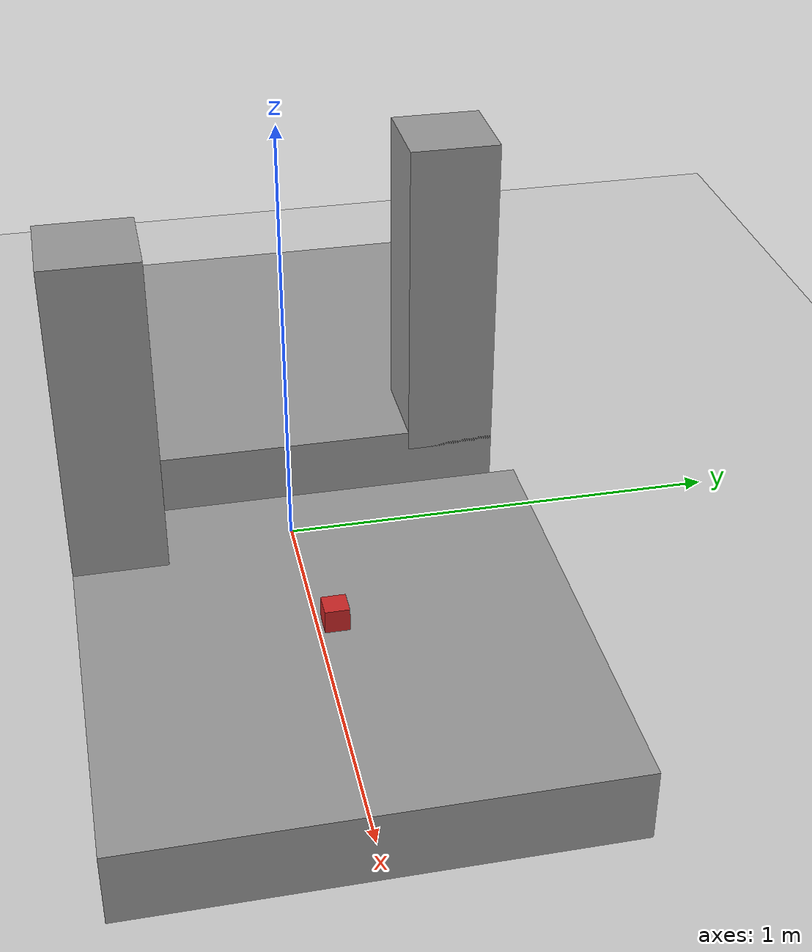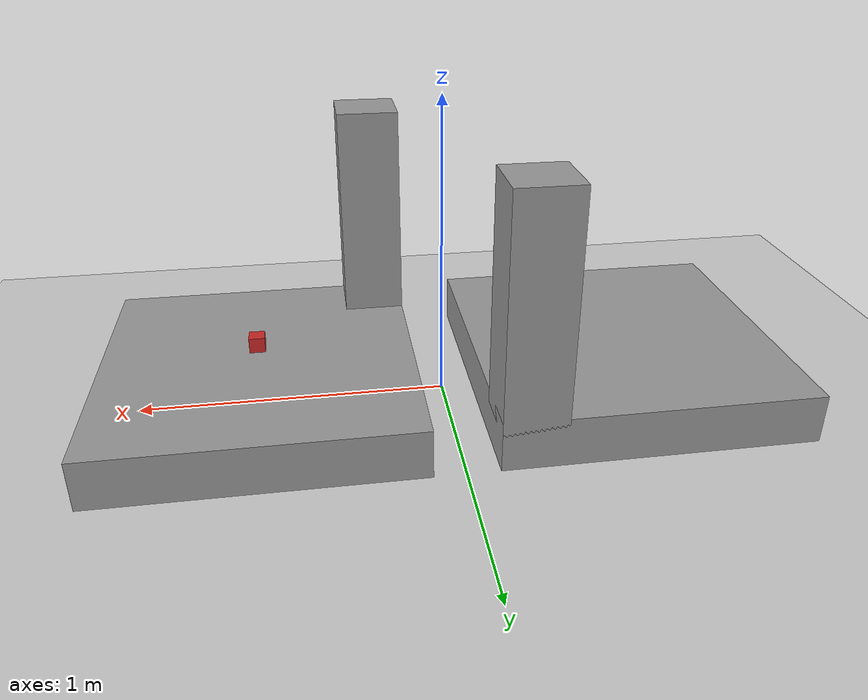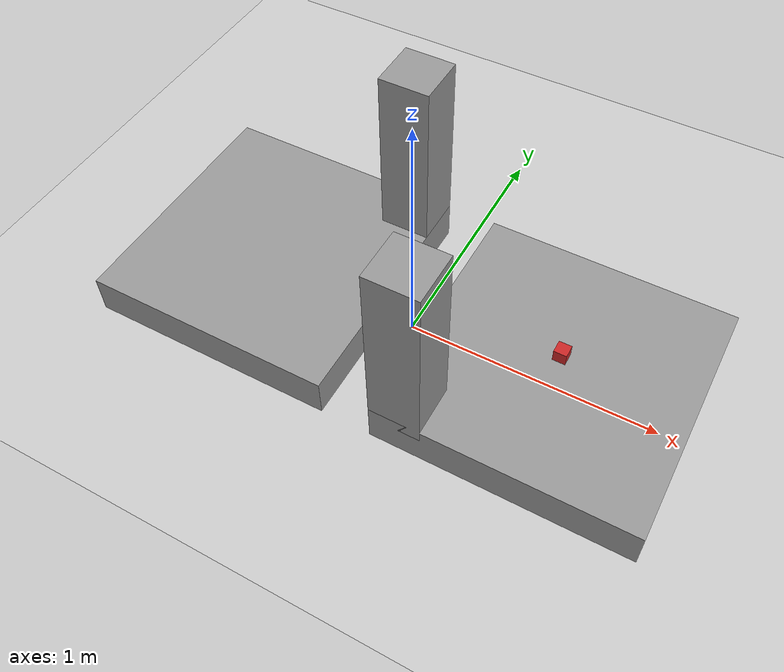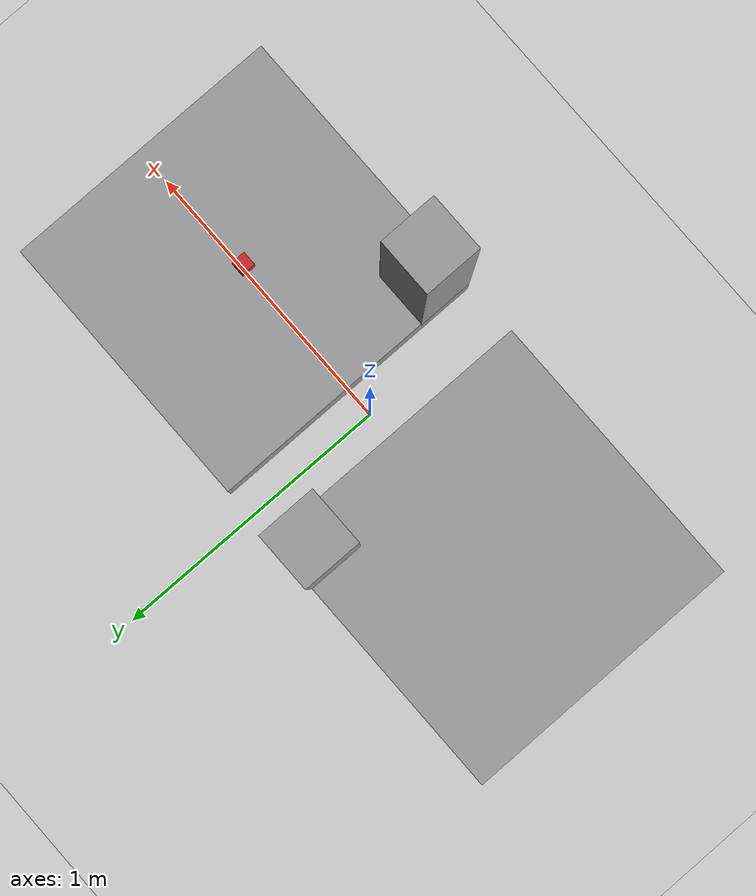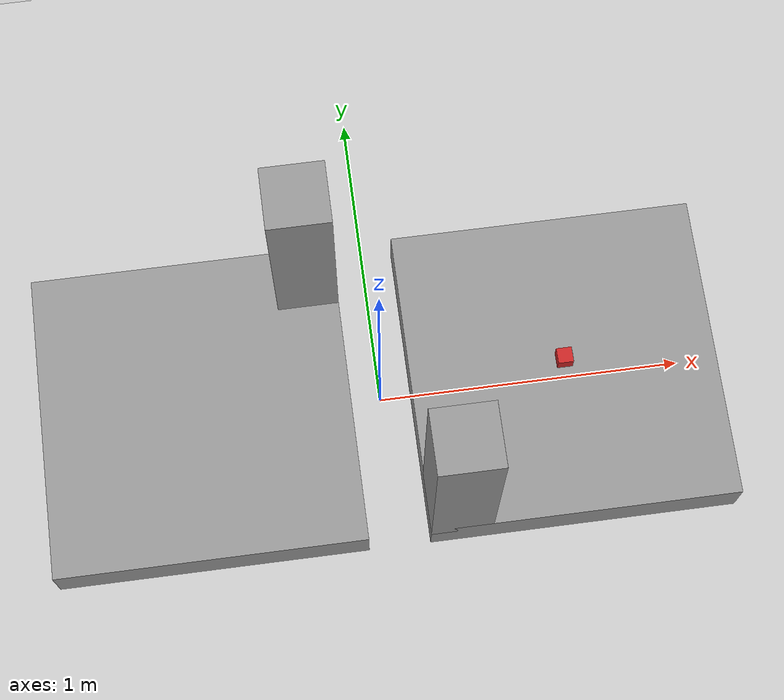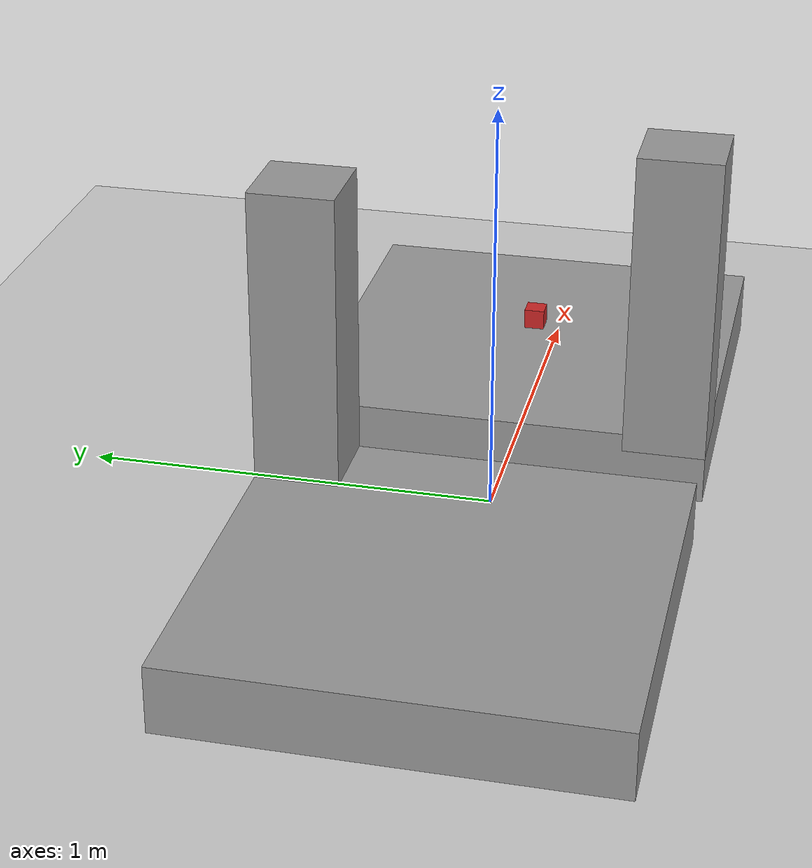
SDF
<?xml version="1.0" ?>

<sdf version="1.4">
    <world name="default">
        <include>
            <uri>model://ground_plane</uri>
        </include>

        <light name='booth_sun' type='point'>
            <pose>0.0 0.0 1 0 -0 0</pose>
            <diffuse>0.7 0.7 0.7 0</diffuse>
            <specular>1 1 1 0</specular>
            <attenuation>
                <range>20</range>
                <constant>0.5</constant>
                <linear>0.01</linear>
                <quadratic>0.001</quadratic>
            </attenuation>
            <cast_shadows>0</cast_shadows>
            <direction>0 0 -1</direction>
        </light>

        <model name='unit_box_1'>
            <link name='link'>
                <inertial>
                    <mass>1</mass>
                    <inertia>
                        <ixx>0.166667</ixx>
                        <ixy>0</ixy>
                        <ixz>0</ixz>
                        <iyy>0.166667</iyy>
                        <iyz>0</iyz>
                        <izz>0.166667</izz>
                    </inertia>
                    <pose>0.3 0.0 0.045 0 0 0</pose>
                </inertial>
                <self_collide>0</self_collide>
                <enable_wind>0</enable_wind>
                <kinematic>0</kinematic>
                <pose>0.3 0.0 0.045 0 0 0</pose>
                <gravity>1</gravity>
                <visual name='visual'>
                    <geometry>
                        <box>
                            <size>1 1 0.16</size>
                        </box>
                    </geometry>
                    <material>
                        <script>
                            <name>Gazebo/Grey</name>
                            <uri>file://media/materials/scripts/gazebo.material</uri>
                        </script>
                        <shader type='pixel'>
                            <normal_map>__default__</normal_map>
                        </shader>
                        <ambient>0.3 0.3 0.3 1</ambient>
                        <diffuse>0.7 0.7 0.7 1</diffuse>
                        <specular>0.01 0.01 0.01 1</specular>
                        <emissive>0 0 0 1</emissive>
                    </material>
                    <pose>0.3 0.0 0.045 0 0 0</pose>
                    <transparency>0</transparency>
                    <cast_shadows>1</cast_shadows>
                </visual>
                <collision name='collision'>
                    <laser_retro>0</laser_retro>
                    <max_contacts>10</max_contacts>
                    <pose>0.3 0.0 0.045 0 0 0</pose>
                    <geometry>
                        <box>
                            <size>1 1 0.16</size>
                        </box>
                    </geometry>
                    <surface>
                        <friction>
                            <ode>
                                <mu>1</mu>
                                <mu2>1</mu2>
                                <fdir1>0 0 0</fdir1>
                                <slip1>0</slip1>
                                <slip2>0</slip2>
                            </ode>
                            <torsional>
                                <coefficient>1</coefficient>
                                <patch_radius>0</patch_radius>
                                <surface_radius>0</surface_radius>
                                <use_patch_radius>1</use_patch_radius>
                                <ode>
                                    <slip>0</slip>
                                </ode>
                            </torsional>
                        </friction>
                        <bounce>
                            <restitution_coefficient>0</restitution_coefficient>
                            <threshold>1e+06</threshold>
                        </bounce>
                        <contact>
                            <collide_without_contact>0</collide_without_contact>
                            <collide_without_contact_bitmask>1</collide_without_contact_bitmask>
                            <collide_bitmask>1</collide_bitmask>
                            <ode>
                                <soft_cfm>0</soft_cfm>
                                <soft_erp>0.2</soft_erp>
                                <kp>1e+13</kp>
                                <kd>1</kd>
                                <max_vel>0.01</max_vel>
                                <min_depth>0</min_depth>
                            </ode>
                            <bullet>
                                <split_impulse>1</split_impulse>
                                <split_impulse_penetration_threshold>-0.01</split_impulse_penetration_threshold>
                                <soft_cfm>0</soft_cfm>
                                <soft_erp>0.2</soft_erp>
                                <kp>1e+13</kp>
                                <kd>1</kd>
                            </bullet>
                        </contact>
                    </surface>
                </collision>
            </link>
            <static>1</static>
            <allow_auto_disable>1</allow_auto_disable>
        </model>

        <model name='unit_box_2'>
            <link name='link'>
                <inertial>
                    <mass>1</mass>
                    <inertia>
                        <ixx>0.166667</ixx>
                        <ixy>0</ixy>
                        <ixz>0</ixz>
                        <iyy>0.166667</iyy>
                        <iyz>0</iyz>
                        <izz>0.166667</izz>
                    </inertia>
                    <pose>-0.3 0.0 0.045 0 0 0</pose>
                </inertial>
                <self_collide>0</self_collide>
                <enable_wind>0</enable_wind>
                <kinematic>0</kinematic>
                <pose>-0.3 0.0 0.045 0 0 0</pose>
                <gravity>1</gravity>
                <visual name='visual'>
                    <geometry>
                        <box>
                            <size>1 1 0.16</size>
                        </box>
                    </geometry>
                    <material>
                        <script>
                            <name>Gazebo/Grey</name>
                            <uri>file://media/materials/scripts/gazebo.material</uri>
                        </script>
                        <shader type='pixel'>
                            <normal_map>__default__</normal_map>
                        </shader>
                        <ambient>0.3 0.3 0.3 1</ambient>
                        <diffuse>0.7 0.7 0.7 1</diffuse>
                        <specular>0.01 0.01 0.01 1</specular>
                        <emissive>0 0 0 1</emissive>
                    </material>
                    <pose>-0.3 0.0 0.045 0 0 0</pose>
                    <transparency>0</transparency>
                    <cast_shadows>1</cast_shadows>
                </visual>
                <collision name='collision'>
                    <laser_retro>0</laser_retro>
                    <max_contacts>10</max_contacts>
                    <pose>-0.3 0.0 0.045 0 0 0</pose>
                    <geometry>
                        <box>
                            <size>1 1 0.16</size>
                        </box>
                    </geometry>
                    <surface>
                        <friction>
                            <ode>
                                <mu>1</mu>
                                <mu2>1</mu2>
                                <fdir1>0 0 0</fdir1>
                                <slip1>0</slip1>
                                <slip2>0</slip2>
                            </ode>
                            <torsional>
                                <coefficient>1</coefficient>
                                <patch_radius>0</patch_radius>
                                <surface_radius>0</surface_radius>
                                <use_patch_radius>1</use_patch_radius>
                                <ode>
                                    <slip>0</slip>
                                </ode>
                            </torsional>
                        </friction>
                        <bounce>
                            <restitution_coefficient>0</restitution_coefficient>
                            <threshold>1e+06</threshold>
                        </bounce>
                        <contact>
                            <collide_without_contact>0</collide_without_contact>
                            <collide_without_contact_bitmask>1</collide_without_contact_bitmask>
                            <collide_bitmask>1</collide_bitmask>
                            <ode>
                                <soft_cfm>0</soft_cfm>
                                <soft_erp>0.2</soft_erp>
                                <kp>1e+13</kp>
                                <kd>1</kd>
                                <max_vel>0.01</max_vel>
                                <min_depth>0</min_depth>
                            </ode>
                            <bullet>
                                <split_impulse>1</split_impulse>
                                <split_impulse_penetration_threshold>-0.01</split_impulse_penetration_threshold>
                                <soft_cfm>0</soft_cfm>
                                <soft_erp>0.2</soft_erp>
                                <kp>1e+13</kp>
                                <kd>1</kd>
                            </bullet>
                        </contact>
                    </surface>
                </collision>
            </link>
            <static>1</static>
            <allow_auto_disable>1</allow_auto_disable>
        </model>

        <model name='unit_box_3'>
            <link name='link'>
                <inertial>
                    <mass>1</mass>
                    <inertia>
                        <ixx>0.166667</ixx>
                        <ixy>0</ixy>
                        <ixz>0</ixz>
                        <iyy>0.166667</iyy>
                        <iyz>0</iyz>
                        <izz>0.166667</izz>
                    </inertia>
                    <pose>0.0 0.0 0.0 0.0 0.0</pose>
                </inertial>
                <self_collide>0</self_collide>
                <enable_wind>0</enable_wind>
                <kinematic>0</kinematic>
                <pose>0.1 0.1 0.0 0 0 0</pose>
                <gravity>1</gravity>
                <visual name='visual'>
                    <geometry>
                        <box>
                            <size>0.2 0.2 0.75</size>
                        </box>
                    </geometry>
                    <material>
                        <script>
                            <name>Gazebo/Grey</name>
                            <uri>file://media/materials/scripts/gazebo.material</uri>
                        </script>
                        <shader type='pixel'>
                            <normal_map>__default__</normal_map>
                        </shader>
                        <ambient>0.3 0.3 0.3 1</ambient>
                        <diffuse>0.7 0.7 0.7 1</diffuse>
                        <specular>0.01 0.01 0.01 1</specular>
                        <emissive>0 0 0 1</emissive>
                    </material>
                    <pose>-0.3 0.3 0.5 0 0 0</pose>
                    <transparency>0</transparency>
                    <cast_shadows>1</cast_shadows>
                </visual>
                <collision name='collision'>
                    <laser_retro>0</laser_retro>
                    <max_contacts>10</max_contacts>
                    <pose>-0.3 0.3 0.5 0 0 0</pose>
                    <geometry>
                        <box>
                            <size>0.2 0.2 0.75</size>
                        </box>
                    </geometry>
                    <surface>
                        <friction>
                            <ode>
                                <mu>1</mu>
                                <mu2>1</mu2>
                                <fdir1>0 0 0</fdir1>
                                <slip1>0</slip1>
                                <slip2>0</slip2>
                            </ode>
                            <torsional>
                                <coefficient>1</coefficient>
                                <patch_radius>0</patch_radius>
                                <surface_radius>0</surface_radius>
                                <use_patch_radius>1</use_patch_radius>
                                <ode>
                                    <slip>0</slip>
                                </ode>
                            </torsional>
                        </friction>
                        <bounce>
                            <restitution_coefficient>0</restitution_coefficient>
                            <threshold>1e+06</threshold>
                        </bounce>
                        <contact>
                            <collide_without_contact>0</collide_without_contact>
                            <collide_without_contact_bitmask>1</collide_without_contact_bitmask>
                            <collide_bitmask>1</collide_bitmask>
                            <ode>
                                <soft_cfm>0</soft_cfm>
                                <soft_erp>0.2</soft_erp>
                                <kp>1e+13</kp>
                                <kd>1</kd>
                                <max_vel>0.01</max_vel>
                                <min_depth>0</min_depth>
                            </ode>
                            <bullet>
                                <split_impulse>1</split_impulse>
                                <split_impulse_penetration_threshold>-0.01</split_impulse_penetration_threshold>
                                <soft_cfm>0</soft_cfm>
                                <soft_erp>0.2</soft_erp>
                                <kp>1e+13</kp>
                                <kd>1</kd>
                            </bullet>
                        </contact>
                    </surface>
                </collision>
            </link>
            <static>1</static>
            <allow_auto_disable>1</allow_auto_disable>
        </model>

        <model name='unit_box_4'>
            <link name='link'>
                <inertial>
                    <mass>1</mass>
                    <inertia>
                        <ixx>0.166667</ixx>
                        <ixy>0</ixy>
                        <ixz>0</ixz>
                        <iyy>0.166667</iyy>
                        <iyz>0</iyz>
                        <izz>0.166667</izz>
                    </inertia>
                    <pose>0.0 0.0 0.0 0.0 0.0</pose>
                </inertial>
                <self_collide>0</self_collide>
                <enable_wind>0</enable_wind>
                <kinematic>0</kinematic>
                <pose>0.5 -0.7 0.0 0 0 0</pose>
                <gravity>1</gravity>
                <visual name='visual'>
                    <geometry>
                        <box>
                            <size>0.2 0.2 0.75</size>
                        </box>
                    </geometry>
                    <material>
                        <script>
                            <name>Gazebo/Grey</name>
                            <uri>file://media/materials/scripts/gazebo.material</uri>
                        </script>
                        <shader type='pixel'>
                            <normal_map>__default__</normal_map>
                        </shader>
                        <ambient>0.3 0.3 0.3 1</ambient>
                        <diffuse>0.7 0.7 0.7 1</diffuse>
                        <specular>0.01 0.01 0.01 1</specular>
                        <emissive>0 0 0 1</emissive>
                    </material>
                    <pose>-0.3 0.3 0.5 0 0 0</pose>
                    <transparency>0</transparency>
                    <cast_shadows>1</cast_shadows>
                </visual>
                <collision name='collision'>
                    <laser_retro>0</laser_retro>
                    <max_contacts>10</max_contacts>
                    <pose>-0.3 0.3 0.5 0 0 0</pose>
                    <geometry>
                        <box>
                            <size>0.2 0.2 0.75</size>
                        </box>
                    </geometry>
                    <surface>
                        <friction>
                            <ode>
                                <mu>1</mu>
                                <mu2>1</mu2>
                                <fdir1>0 0 0</fdir1>
                                <slip1>0</slip1>
                                <slip2>0</slip2>
                            </ode>
                            <torsional>
                                <coefficient>1</coefficient>
                                <patch_radius>0</patch_radius>
                                <surface_radius>0</surface_radius>
                                <use_patch_radius>1</use_patch_radius>
                                <ode>
                                    <slip>0</slip>
                                </ode>
                            </torsional>
                        </friction>
                        <bounce>
                            <restitution_coefficient>0</restitution_coefficient>
                            <threshold>1e+06</threshold>
                        </bounce>
                        <contact>
                            <collide_without_contact>0</collide_without_contact>
                            <collide_without_contact_bitmask>1</collide_without_contact_bitmask>
                            <collide_bitmask>1</collide_bitmask>
                            <ode>
                                <soft_cfm>0</soft_cfm>
                                <soft_erp>0.2</soft_erp>
                                <kp>1e+13</kp>
                                <kd>1</kd>
                                <max_vel>0.01</max_vel>
                                <min_depth>0</min_depth>
                            </ode>
                            <bullet>
                                <split_impulse>1</split_impulse>
                                <split_impulse_penetration_threshold>-0.01</split_impulse_penetration_threshold>
                                <soft_cfm>0</soft_cfm>
                                <soft_erp>0.2</soft_erp>
                                <kp>1e+13</kp>
                                <kd>1</kd>
                            </bullet>
                        </contact>
                    </surface>
                </collision>
            </link>
            <static>1</static>
            <allow_auto_disable>1</allow_auto_disable>
        </model>

        <model name='cube_red_1'>
            <link name='my_box'>
                <inertial>
                    <pose>0 0 0.0145 0 0 0</pose>
                    <mass>0.0001</mass>
                    <inertia>
                        <ixx>0.0001</ixx>
                        <ixy>0</ixy>
                        <ixz>0</ixz>
                        <iyy>0.0001</iyy>
                        <iyz>0</iyz>
                        <izz>0.0001</izz>
                    </inertia>
                </inertial>
                <self_collide>0</self_collide>
                <enable_wind>0</enable_wind>
                <kinematic>0</kinematic>
                <pose>0.6 0 0.2 0 0 0</pose>
                <visual name='my_box_visual'>
                    <pose>0 0 0.025 0 -0 0</pose>
                    <geometry>
                        <box>
                            <size>0.05 0.05 0.05</size>
                        </box>
                    </geometry>
                    <material>
                        <script>
                            <name>Gazebo/Red</name>
                            <uri>file://media/materials/scripts/gazebo.material</uri>
                        </script>
                        <shader type='pixel'/>
                    </material>
                    <transparency>0</transparency>
                    <cast_shadows>1</cast_shadows>
                </visual>
                <collision name='my_box_collision'>
                    <laser_retro>0</laser_retro>
                    <max_contacts>10</max_contacts>
                    <pose>0 0 0.025 0 -0 0</pose>
                    <geometry>
                        <box>
                            <size>0.05 0.05 0.05</size>
                        </box>
                    </geometry>
                    <surface>
                        <friction>
                            <ode>
                                <mu>100</mu>
                                <mu2>100</mu2>
                                <fdir1>0 0 0</fdir1>
                                <slip1>0</slip1>
                                <slip2>0</slip2>
                            </ode>
                                <torsional>
                                <coefficient>1</coefficient>
                                <patch_radius>0</patch_radius>
                                <surface_radius>0</surface_radius>
                                <use_patch_radius>1</use_patch_radius>
                                <ode>
                                    <slip>0</slip>
                                </ode>
                            </torsional>
                        </friction>
                        <bounce>
                            <restitution_coefficient>0</restitution_coefficient>
                            <threshold>1e+06</threshold>
                        </bounce>
                        <contact>
                            <collide_without_contact>0</collide_without_contact>
                            <collide_without_contact_bitmask>1</collide_without_contact_bitmask>
                            <collide_bitmask>1</collide_bitmask>
                            <ode>
                                <soft_cfm>0</soft_cfm>
                                <soft_erp>0.2</soft_erp>
                                <kp>1e13</kp>
                                <kd>1</kd>
                                <max_vel>0.01</max_vel>
                                <min_depth>0</min_depth>
                            </ode>
                            <bullet>
                                <split_impulse>1</split_impulse>
                                <split_impulse_penetration_threshold>-0.01</split_impulse_penetration_threshold>
                                <soft_cfm>0</soft_cfm>
                                <soft_erp>0.2</soft_erp>
                                <kp>1e13</kp>
                                <kd>1</kd>
                            </bullet>
                        </contact>
                    </surface>
                </collision>
            </link>
            <static>0</static>
            <allow_auto_disable>1</allow_auto_disable>
        </model>
    </world>
</sdf>
